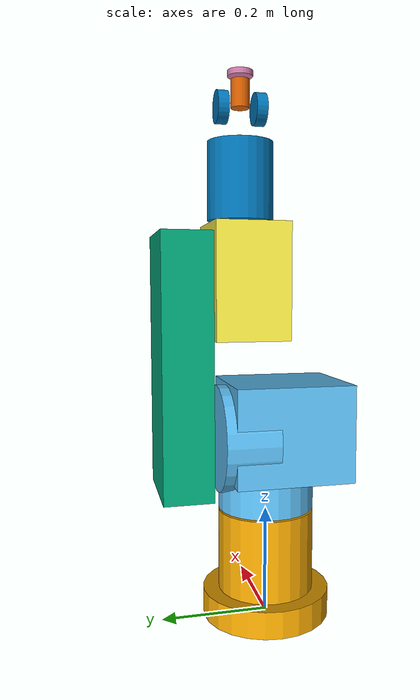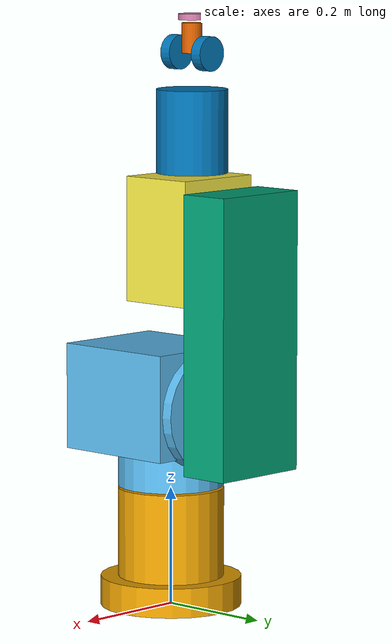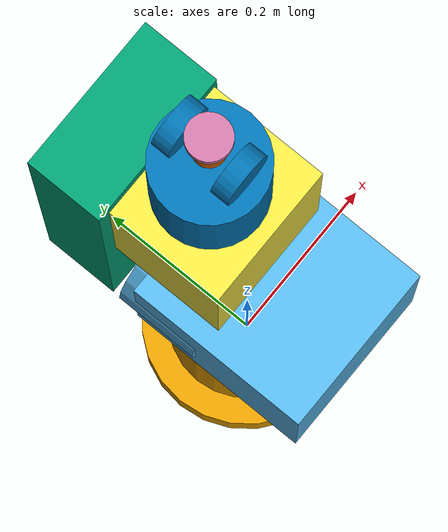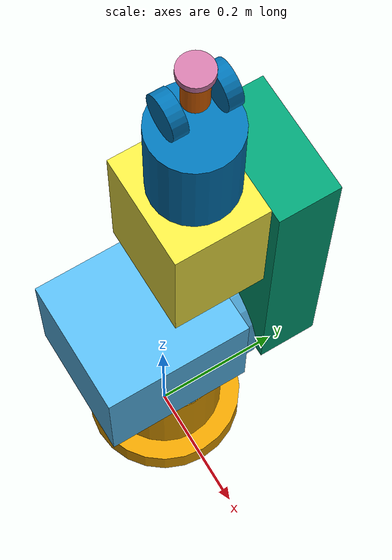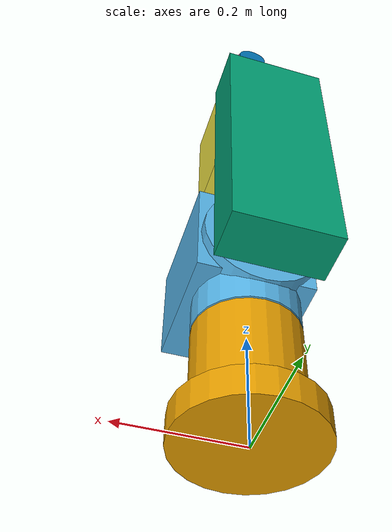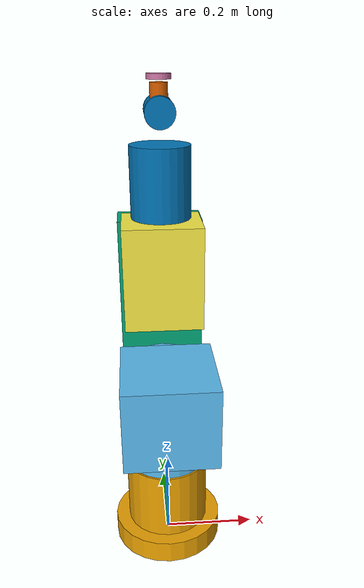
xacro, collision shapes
<?xml version="1.0"?>
<robot name="rx60" xmlns:xacro="http://www.ros.org/wiki/xacro">

  <!-- Links -->
  <link name="base_link">
    <inertial>
      <!-- geschaetzte Werte -->
      <origin xyz="0 0 0.2" rpy="0 0 0"/>
      <mass value="7"/>
      <inertia
        ixx="0.02" ixy="0.0"  ixz="0.0"
        iyy="0.02" iyz="0.0"
        izz="0.2"/>
    </inertial>

    <visual>
      <origin xyz="0 0 0" rpy="0 0 0"/>
      <geometry>
        <mesh filename="package://rx60_description/meshes/base.dae" scale="1 1 1"/>
      </geometry>
    </visual>

    <collision>
      <origin xyz="0 0 0.025" rpy="0 0 0"/>
      <geometry>
        <cylinder radius="0.12" length="0.05"/>
      </geometry>
    </collision>
    <collision>
      <origin xyz="0 0 0.11" rpy="0 0 0"/>
      <geometry>
        <cylinder radius="0.09" length="0.185"/>
      </geometry>
    </collision>
  </link>

  <link name="shoulder_link">
    <inertial>
      <!-- geschaetzte Werte -->
      <origin xyz="0 0 0" rpy="0 0 0"/>
      <mass value="10"/>
      <inertia
        ixx="0.066" ixy="0.0"   ixz="0.0"
        iyy="0.066" iyz="0.0"
        izz="0.066"/>
    </inertial>

    <visual>
      <origin xyz="0 0 0" rpy="0 0 0"/>
      <geometry>
        <mesh filename="package://rx60_description/meshes/shoulder.dae" scale="1 1 1"/>
      </geometry>
    </visual>

    <collision>
      <origin xyz="0 0 -0.085" rpy="0 0 0"/>
      <geometry>
        <cylinder radius="0.09" length="0.1"/>
      </geometry>
    </collision>
    <collision>
      <origin xyz="0 0.045 0" rpy="-1.5707963 0 0"/>
      <geometry>
        <cylinder radius="0.1" length="0.1"/>
      </geometry>
    </collision>
    <collision>
      <origin xyz="0.005 -0.034 0.014" rpy="0 0 0"/>
      <geometry>
        <box size="0.2 0.22 0.18"/>
      </geometry>
    </collision>
  </link>

  <link name="arm_link">
    <inertial>
      <!-- geschaetzte Werte -->
      <origin xyz="0 0 0.16" rpy="0 0 0"/>
      <mass value="10"/>
      <inertia
        ixx="0.7" ixy="0.0" ixz="0.0"
        iyy="0.0" iyz="0.0"
        izz="0.7"/>
    </inertial>

    <visual>
      <origin xyz="0 0 0" rpy="0 0 1.5707963"/>
      <geometry>
        <mesh filename="package://rx60_description/meshes/arm.dae" scale="1 1 1"/>
      </geometry>
    </visual>

    <collision>
      <origin xyz="0.14 0 0.16" rpy="0 0 0"/>
      <geometry>
        <box size="0.47 0.18 0.09"/>
      </geometry>
    </collision>
  </link>

  <link name="elbow_link">
    <inertial>
      <!-- geschaetzte Werte -->
      <origin xyz="0 0 0" rpy="0 0 0"/>
      <mass value="8"/>
      <inertia
        ixx="0.035" ixy="0.0"   ixz="0.0"
        iyy="0.035" iyz="0.0"
        izz="0.35"/>
    </inertial>

    <visual>
      <origin xyz="0 0 0" rpy="3.1415926 0 1.5707963"/>
      <geometry>
        <mesh filename="package://rx60_description/meshes/elbow.dae" scale="1 1 1"/>
      </geometry>
    </visual>

    <collision>
      <origin xyz="0 0 -0.007" rpy="0 0 0"/>
      <geometry>
        <box size="0.21 0.16 0.135"/>
      </geometry>
    </collision>
  </link>

  <link name="forearm_link">
    <inertial>
      <!-- geschaetzte Werte -->
      <origin xyz="0 0 0.18" rpy="0 0 0"/>
      <mass value="4"/>
      <inertia
        ixx="0.012" ixy="0.0"   ixz="0.0"
        iyy="0.012" iyz="0.0"
        izz="0.007"/>
    </inertial>

    <visual>
      <origin xyz="0 0 0" rpy="0 0 0"/>
      <geometry>
        <mesh filename="package://rx60_description/meshes/forearm.dae" scale="1 1 1"/>
      </geometry>
    </visual>

    <collision>
      <origin xyz="0 0 0.18" rpy="0 0 0"/>
      <geometry>
        <cylinder radius="0.06" length="0.14"/>
      </geometry>
    </collision>
    <collision>
      <origin xyz="0 0.035 0.31" rpy="-1.5707963 0 0"/>
      <geometry>
        <cylinder radius="0.029" length="0.02"/>
      </geometry>
    </collision>
    <collision>
      <origin xyz="0 -0.035 0.31" rpy="-1.5707963 0 0"/>
      <geometry>
        <cylinder radius="0.029" length="0.02"/>
      </geometry>
    </collision>
  </link>

  <link name="wrist_link">
    <inertial>
      <!-- geschaetzte Werte -->
      <origin xyz="0 0 0" rpy="0 0 0"/>
      <mass value="1"/>
      <inertia
        ixx="0.001" ixy="0.0"   ixz="0.0"
        iyy="0.001" iyz="0.0"
        izz="0.001"/>
    </inertial>

    <visual>
      <origin xyz="0 0 0" rpy="3.1415926 0 1.5707963"/>
      <geometry>
        <mesh filename="package://rx60_description/meshes/wrist.dae" scale="1 1 1"/>
      </geometry>
    </visual>

    <collision>
      <origin xyz="0.025 0 0" rpy="0 -1.5707963 0"/>
      <geometry>
        <cylinder radius="0.017" length="0.05"/>
      </geometry>
    </collision>
  </link>

  <link name="tool_link">
    <inertial>
      <!-- geschaetzte Werte -->
      <origin xyz="0 0 0" rpy="0 0 0"/>
      <mass value="1"/>
      <inertia
        ixx="0.001" ixy="0.0"   ixz="0.0"
        iyy="0.001" iyz="0.0"
        izz="0.001"/>
    </inertial>

    <visual>
      <origin xyz="0 0 0" rpy="0 0 0"/>
      <geometry>
        <mesh filename="package://rx60_description/meshes/tool.dae" scale="1 1 1"/>
      </geometry>
    </visual>

    <collision>
      <origin xyz="0 0 -0.005" rpy="0 0 0"/>
      <geometry>
        <cylinder radius="0.023" length="0.01"/>
      </geometry>
    </collision>
  </link>

  <!-- Joints -->
  <joint name="joint1" type="revolute">
    <origin xyz="0 0 0.341" rpy="0 0 0"/>
    <parent link="base_link"/>
    <child link="shoulder_link"/>
    <axis xyz="0 0 1"/>
    <limit lower="-2.7925" upper="2.7925" velocity="0.5" effort="1000"/>
    <dynamics friction="0.0001" damping="1"/>
  </joint>

  <joint name="joint2" type="revolute">
    <origin xyz="0 0 0" rpy="-1.5707963 -1.5707963 0"/>
    <parent link="shoulder_link"/>
    <child link="arm_link"/>
    <axis xyz="0 0 1"/>
    <limit lower="-2.2253" upper="2.2253" velocity="0.5" effort="1000"/>
    <dynamics friction="0.0001" damping="1"/>
  </joint>

  <joint name="joint3" type="revolute">
    <origin xyz="0.290 0 0.049" rpy="0 0 0"/>
    <parent link="arm_link"/>
    <child link="elbow_link"/>
    <axis xyz="0 0 1"/>
    <limit lower="-2.3474" upper="2.3474" velocity="0.5" effort="1000"/>
    <dynamics friction="0.0001" damping="1"/>
  </joint>

  <joint name="joint4" type="revolute">
    <origin xyz="0 0 0" rpy="1.5707963 0 1.5707963"/>
    <parent link="elbow_link"/>
    <child link="forearm_link"/>
    <axis xyz="0 0 1"/>
    <limit lower="-4.7123" upper="4.7123" velocity="0.5" effort="1000"/>
    <dynamics friction="0.0001" damping="1"/>
  </joint>

  <joint name="joint5" type="revolute">
    <origin xyz="0 0 0.310" rpy="-1.5707963 -1.5707963 0"/>
    <parent link="forearm_link"/>
    <child link="wrist_link"/>
    <axis xyz="0 0 1"/>
    <limit lower="-1.9111" upper="2.1031" velocity="0.5" effort="1000"/>
    <dynamics friction="0.0001" damping="1"/>
  </joint>

  <joint name="joint6" type="revolute">
    <origin xyz="0.065 0 0" rpy="1.5707963 0 1.5707963"/>
    <parent link="wrist_link"/>
    <child link="tool_link"/>
    <axis xyz="0 0 1"/>
    <limit lower="-4.7124" upper="4.7124" velocity="0.5" effort="1000"/>
    <dynamics friction="0.0001" damping="1"/>
  </joint>

  <!-- Transmissions -->
  <transmission name="joint1_trans">
    <type>transmission_interface/SimpleTransmission</type>
    <joint name="joint1">
      <hardwareInterface>hardware_interface/EffortJointInterface</hardwareInterface>
    </joint>
    <actuator name="motor1">
      <hardwareInterface>EffortJointInterface</hardwareInterface>
      <mechanicalReduction>30</mechanicalReduction>  <!-- geschaetzter Wert -->
    </actuator>
  </transmission>

  <transmission name="joint2_trans">
    <type>transmission_interface/SimpleTransmission</type>
    <joint name="joint2">
      <hardwareInterface>hardware_interface/EffortJointInterface</hardwareInterface>
    </joint>
    <actuator name="motor2">
      <hardwareInterface>EffortJointInterface</hardwareInterface>
      <mechanicalReduction>30</mechanicalReduction>  <!-- geschaetzter Wert -->
    </actuator>
  </transmission>

  <transmission name="joint3_trans">
    <type>transmission_interface/SimpleTransmission</type>
    <joint name="joint3">
      <hardwareInterface>hardware_interface/EffortJointInterface</hardwareInterface>
    </joint>
    <actuator name="motor3">
      <hardwareInterface>EffortJointInterface</hardwareInterface>
      <mechanicalReduction>30</mechanicalReduction>  <!-- geschaetzter Wert -->
    </actuator>
  </transmission>

  <transmission name="joint4_trans">
    <type>transmission_interface/SimpleTransmission</type>
    <joint name="joint4">
      <hardwareInterface>hardware_interface/EffortJointInterface</hardwareInterface>
    </joint>
    <actuator name="motor4">
      <hardwareInterface>EffortJointInterface</hardwareInterface>
      <mechanicalReduction>15</mechanicalReduction>  <!-- geschaetzter Wert -->
    </actuator>
  </transmission>

  <transmission name="joint5_trans">
    <type>transmission_interface/SimpleTransmission</type>
    <joint name="joint5">
      <hardwareInterface>hardware_interface/EffortJointInterface</hardwareInterface>
    </joint>
    <actuator name="motor5">
      <hardwareInterface>EffortJointInterface</hardwareInterface>
      <mechanicalReduction>15</mechanicalReduction>  <!-- geschaetzter Wert -->
    </actuator>
  </transmission>

  <transmission name="joint6_trans">
    <type>transmission_interface/SimpleTransmission</type>
    <joint name="joint6">
      <hardwareInterface>hardware_interface/EffortJointInterface</hardwareInterface>
    </joint>
    <actuator name="motor6">
      <hardwareInterface>EffortJointInterface</hardwareInterface>
      <mechanicalReduction>15</mechanicalReduction>  <!-- geschaetzter Wert -->
    </actuator>
  </transmission>

  <!-- base_link an Gazebo world fixieren -->
  <link name="world"/>

  <joint name="fixed" type="fixed">
    <parent link="world"/>
    <child link="base_link"/>
  </joint>

  <!-- Import all Gazebo-customization elements -->
  <xacro:include filename="$(find rx60_description)/urdf/rx60.gazebo" />

</robot>
